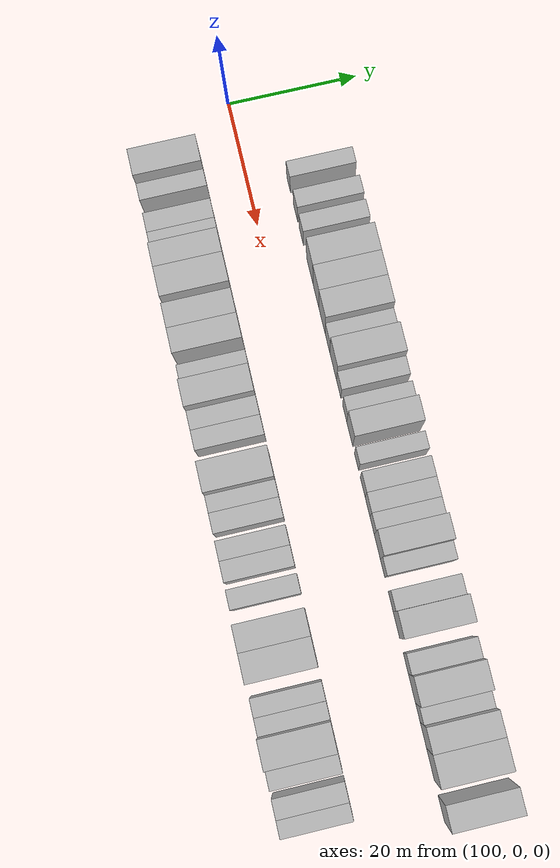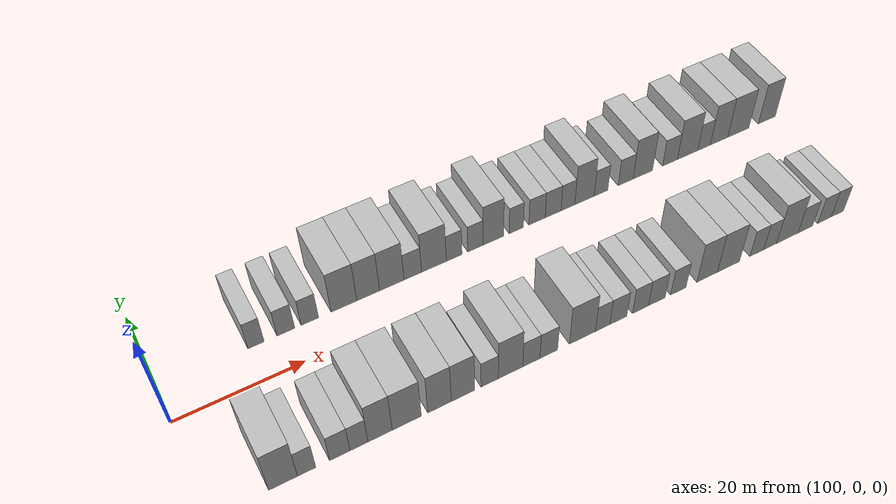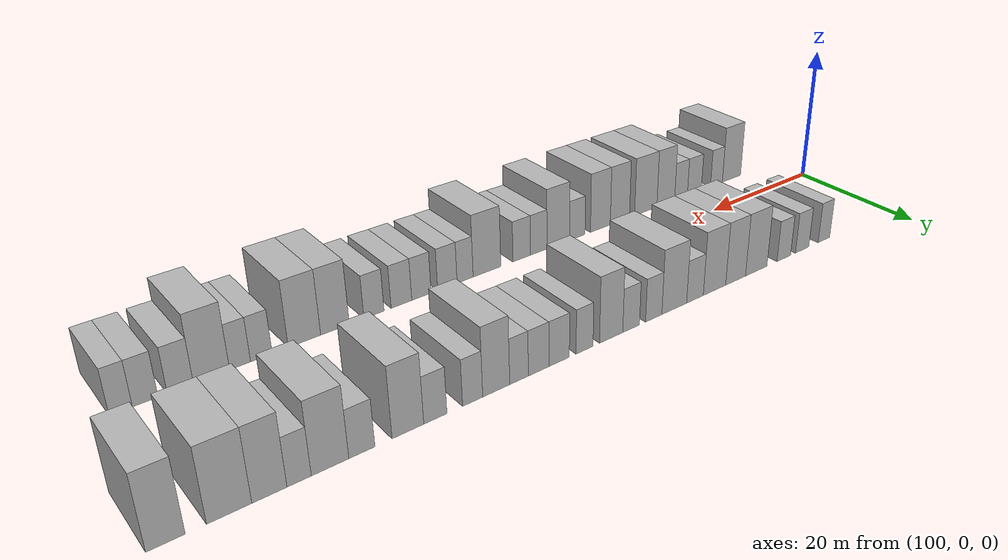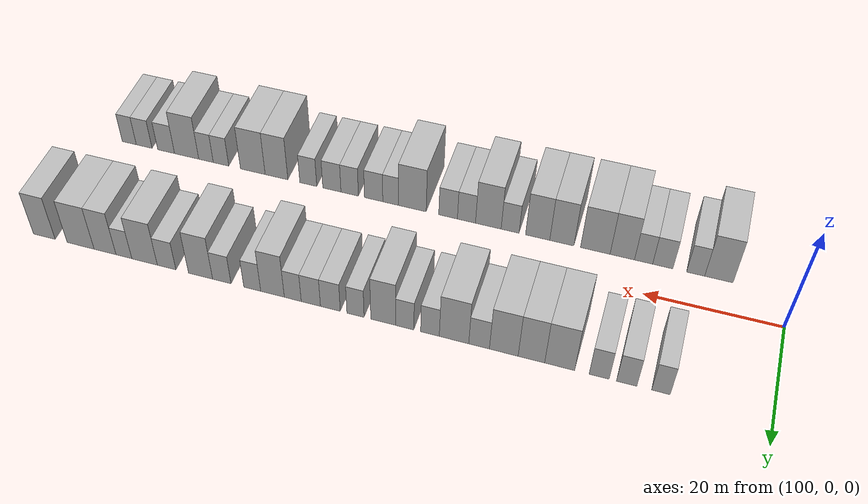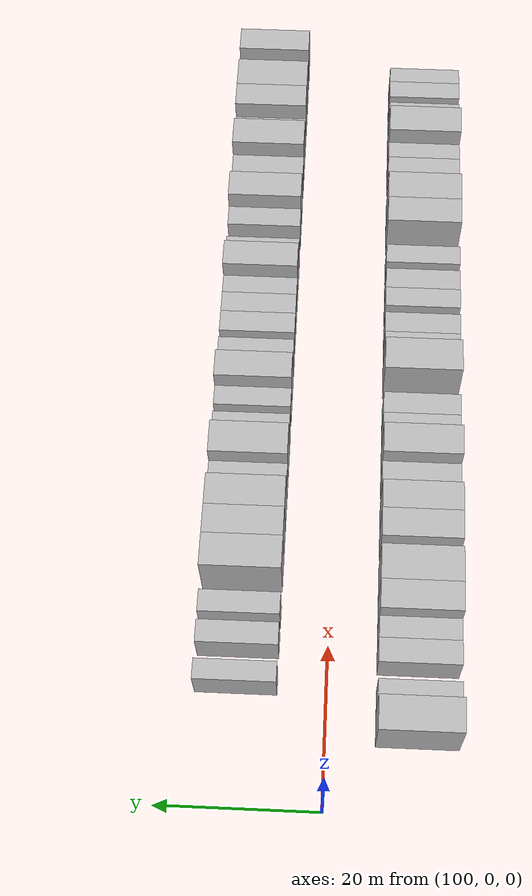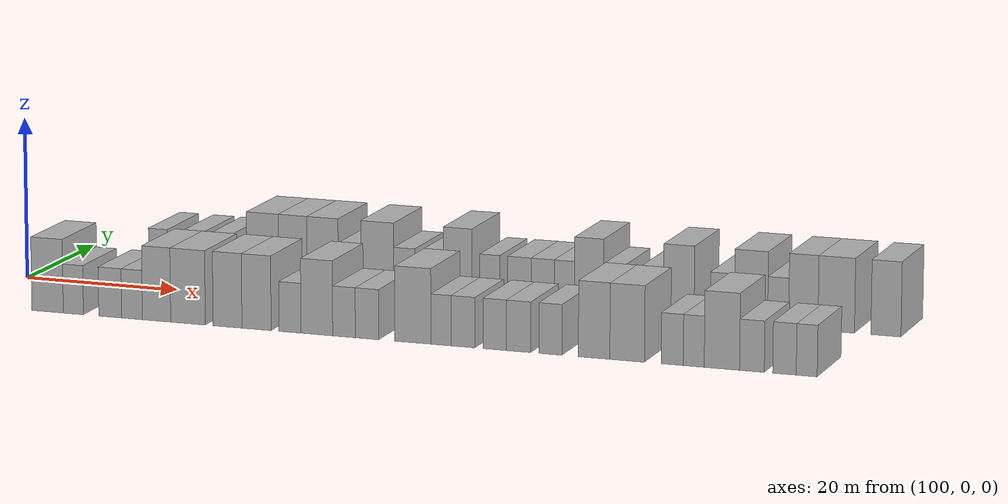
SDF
<sdf version="1.6">
 <world name="default">
  <model name="building_28">
   <static>1</static>
   <pose>114.8620 11.0000 0 0.000000 0.000000 1.570796</pose>
   <link name="link">
    <pose>0 0 3.00 0 0 0</pose>
    <collision name="collision"><geometry><box><size>10.0000 2.4978 6.0000</size></box></geometry></collision>
    <visual name="visual">
     <cast_shadows>0</cast_shadows>
     <geometry><box><size>10.0000 2.4978 6.0000</size></box></geometry>
     <material>
      <script>
       <uri>model://HANNAS_wall/materials/scripts</uri>
       <uri>model://HANNAS_wall/materials/textures</uri>
       <name>vrc/HANNAS_wall</name>
      </script>
     </material>
    </visual>
   </link>
  </model>
  <model name="building_29">
   <static>1</static>
   <pose>119.5008 11.0000 0 0.000000 0.000000 1.570796</pose>
   <link name="link">
    <pose>0 0 3.00 0 0 0</pose>
    <collision name="collision"><geometry><box><size>10.0000 2.7798 6.0000</size></box></geometry></collision>
    <visual name="visual">
     <cast_shadows>0</cast_shadows>
     <geometry><box><size>10.0000 2.7798 6.0000</size></box></geometry>
     <material>
      <script>
       <uri>model://HANNAS_wall/materials/scripts</uri>
       <uri>model://HANNAS_wall/materials/textures</uri>
       <name>vrc/HANNAS_wall</name>
      </script>
     </material>
    </visual>
   </link>
  </model>
  <model name="building_30">
   <static>1</static>
   <pose>123.2733 11.0000 0 0.000000 0.000000 1.570796</pose>
   <link name="link">
    <pose>0 0 3.00 0 0 0</pose>
    <collision name="collision"><geometry><box><size>10.0000 2.7651 6.0000</size></box></geometry></collision>
    <visual name="visual">
     <cast_shadows>0</cast_shadows>
     <geometry><box><size>10.0000 2.7651 6.0000</size></box></geometry>
     <material>
      <script>
       <uri>model://HANNAS_wall/materials/scripts</uri>
       <uri>model://HANNAS_wall/materials/textures</uri>
       <name>vrc/HANNAS_wall</name>
      </script>
     </material>
    </visual>
   </link>
  </model>
  <model name="building_31">
   <static>1</static>
   <pose>128.7445 11.0000 0 0.000000 0.000000 1.570796</pose>
   <link name="link">
    <pose>0 0 4.50 0 0 0</pose>
    <collision name="collision"><geometry><box><size>10.0000 4.1774 9.0000</size></box></geometry></collision>
    <visual name="visual">
     <cast_shadows>0</cast_shadows>
     <geometry><box><size>10.0000 4.1774 9.0000</size></box></geometry>
     <material>
      <script>
       <uri>model://HANNAS_wall/materials/scripts</uri>
       <uri>model://HANNAS_wall/materials/textures</uri>
       <name>vrc/HANNAS_wall</name>
      </script>
     </material>
    </visual>
   </link>
  </model>
  <model name="building_32">
   <static>1</static>
   <pose>132.7056 11.0000 0 0.000000 0.000000 1.570796</pose>
   <link name="link">
    <pose>0 0 4.50 0 0 0</pose>
    <collision name="collision"><geometry><box><size>10.0000 3.7448 9.0000</size></box></geometry></collision>
    <visual name="visual">
     <cast_shadows>0</cast_shadows>
     <geometry><box><size>10.0000 3.7448 9.0000</size></box></geometry>
     <material>
      <script>
       <uri>model://HANNAS_wall/materials/scripts</uri>
       <uri>model://HANNAS_wall/materials/textures</uri>
       <name>vrc/HANNAS_wall</name>
      </script>
     </material>
    </visual>
   </link>
  </model>
  <model name="building_33">
   <static>1</static>
   <pose>136.6196 11.0000 0 0.000000 0.000000 1.570796</pose>
   <link name="link">
    <pose>0 0 4.50 0 0 0</pose>
    <collision name="collision"><geometry><box><size>10.0000 4.0831 9.0000</size></box></geometry></collision>
    <visual name="visual">
     <cast_shadows>0</cast_shadows>
     <geometry><box><size>10.0000 4.0831 9.0000</size></box></geometry>
     <material>
      <script>
       <uri>model://HANNAS_wall/materials/scripts</uri>
       <uri>model://HANNAS_wall/materials/textures</uri>
       <name>vrc/HANNAS_wall</name>
      </script>
     </material>
    </visual>
   </link>
  </model>
  <model name="building_34">
   <static>1</static>
   <pose>140.1414 11.0000 0 0.000000 0.000000 1.570796</pose>
   <link name="link">
    <pose>0 0 3.00 0 0 0</pose>
    <collision name="collision"><geometry><box><size>10.0000 2.9606 6.0000</size></box></geometry></collision>
    <visual name="visual">
     <cast_shadows>0</cast_shadows>
     <geometry><box><size>10.0000 2.9606 6.0000</size></box></geometry>
     <material>
      <script>
       <uri>model://HANNAS_wall/materials/scripts</uri>
       <uri>model://HANNAS_wall/materials/textures</uri>
       <name>vrc/HANNAS_wall</name>
      </script>
     </material>
    </visual>
   </link>
  </model>
  <model name="building_35">
   <static>1</static>
   <pose>143.7524 11.0000 0 0.000000 0.000000 1.570796</pose>
   <link name="link">
    <pose>0 0 4.50 0 0 0</pose>
    <collision name="collision"><geometry><box><size>10.0000 4.2613 9.0000</size></box></geometry></collision>
    <visual name="visual">
     <cast_shadows>0</cast_shadows>
     <geometry><box><size>10.0000 4.2613 9.0000</size></box></geometry>
     <material>
      <script>
       <uri>model://HANNAS_wall/materials/scripts</uri>
       <uri>model://HANNAS_wall/materials/textures</uri>
       <name>vrc/HANNAS_wall</name>
      </script>
     </material>
    </visual>
   </link>
  </model>
  <model name="building_36">
   <static>1</static>
   <pose>147.2418 11.0000 0 0.000000 0.000000 1.570796</pose>
   <link name="link">
    <pose>0 0 3.00 0 0 0</pose>
    <collision name="collision"><geometry><box><size>10.0000 2.7175 6.0000</size></box></geometry></collision>
    <visual name="visual">
     <cast_shadows>0</cast_shadows>
     <geometry><box><size>10.0000 2.7175 6.0000</size></box></geometry>
     <material>
      <script>
       <uri>model://HANNAS_wall/materials/scripts</uri>
       <uri>model://HANNAS_wall/materials/textures</uri>
       <name>vrc/HANNAS_wall</name>
      </script>
     </material>
    </visual>
   </link>
  </model>
  <model name="building_37">
   <static>1</static>
   <pose>150.9488 11.0000 0 0.000000 0.000000 1.570796</pose>
   <link name="link">
    <pose>0 0 3.00 0 0 0</pose>
    <collision name="collision"><geometry><box><size>10.0000 2.6964 6.0000</size></box></geometry></collision>
    <visual name="visual">
     <cast_shadows>0</cast_shadows>
     <geometry><box><size>10.0000 2.6964 6.0000</size></box></geometry>
     <material>
      <script>
       <uri>model://HANNAS_wall/materials/scripts</uri>
       <uri>model://HANNAS_wall/materials/textures</uri>
       <name>vrc/HANNAS_wall</name>
      </script>
     </material>
    </visual>
   </link>
  </model>
  <model name="building_38">
   <static>1</static>
   <pose>154.1245 11.0000 0 0.000000 0.000000 1.570796</pose>
   <link name="link">
    <pose>0 0 4.50 0 0 0</pose>
    <collision name="collision"><geometry><box><size>10.0000 3.6550 9.0000</size></box></geometry></collision>
    <visual name="visual">
     <cast_shadows>0</cast_shadows>
     <geometry><box><size>10.0000 3.6550 9.0000</size></box></geometry>
     <material>
      <script>
       <uri>model://HANNAS_wall/materials/scripts</uri>
       <uri>model://HANNAS_wall/materials/textures</uri>
       <name>vrc/HANNAS_wall</name>
      </script>
     </material>
    </visual>
   </link>
  </model>
  <model name="building_39">
   <static>1</static>
   <pose>158.2361 11.0000 0 0.000000 0.000000 1.570796</pose>
   <link name="link">
    <pose>0 0 3.00 0 0 0</pose>
    <collision name="collision"><geometry><box><size>10.0000 2.5682 6.0000</size></box></geometry></collision>
    <visual name="visual">
     <cast_shadows>0</cast_shadows>
     <geometry><box><size>10.0000 2.5682 6.0000</size></box></geometry>
     <material>
      <script>
       <uri>model://HANNAS_wall/materials/scripts</uri>
       <uri>model://HANNAS_wall/materials/textures</uri>
       <name>vrc/HANNAS_wall</name>
      </script>
     </material>
    </visual>
   </link>
  </model>
  <model name="building_40">
   <static>1</static>
   <pose>162.0129 11.0000 0 0.000000 0.000000 1.570796</pose>
   <link name="link">
    <pose>0 0 3.00 0 0 0</pose>
    <collision name="collision"><geometry><box><size>10.0000 2.9854 6.0000</size></box></geometry></collision>
    <visual name="visual">
     <cast_shadows>0</cast_shadows>
     <geometry><box><size>10.0000 2.9854 6.0000</size></box></geometry>
     <material>
      <script>
       <uri>model://HANNAS_wall/materials/scripts</uri>
       <uri>model://HANNAS_wall/materials/textures</uri>
       <name>vrc/HANNAS_wall</name>
      </script>
     </material>
    </visual>
   </link>
  </model>
  <model name="building_41">
   <static>1</static>
   <pose>164.9668 11.0000 0 0.000000 0.000000 1.570796</pose>
   <link name="link">
    <pose>0 0 3.00 0 0 0</pose>
    <collision name="collision"><geometry><box><size>10.0000 2.9223 6.0000</size></box></geometry></collision>
    <visual name="visual">
     <cast_shadows>0</cast_shadows>
     <geometry><box><size>10.0000 2.9223 6.0000</size></box></geometry>
     <material>
      <script>
       <uri>model://HANNAS_wall/materials/scripts</uri>
       <uri>model://HANNAS_wall/materials/textures</uri>
       <name>vrc/HANNAS_wall</name>
      </script>
     </material>
    </visual>
   </link>
  </model>
  <model name="building_42">
   <static>1</static>
   <pose>167.7233 11.0000 0 0.000000 0.000000 1.570796</pose>
   <link name="link">
    <pose>0 0 3.00 0 0 0</pose>
    <collision name="collision"><geometry><box><size>10.0000 2.5906 6.0000</size></box></geometry></collision>
    <visual name="visual">
     <cast_shadows>0</cast_shadows>
     <geometry><box><size>10.0000 2.5906 6.0000</size></box></geometry>
     <material>
      <script>
       <uri>model://HANNAS_wall/materials/scripts</uri>
       <uri>model://HANNAS_wall/materials/textures</uri>
       <name>vrc/HANNAS_wall</name>
      </script>
     </material>
    </visual>
   </link>
  </model>
  <model name="building_43">
   <static>1</static>
   <pose>170.8383 11.0000 0 0.000000 0.000000 1.570796</pose>
   <link name="link">
    <pose>0 0 4.50 0 0 0</pose>
    <collision name="collision"><geometry><box><size>10.0000 3.6394 9.0000</size></box></geometry></collision>
    <visual name="visual">
     <cast_shadows>0</cast_shadows>
     <geometry><box><size>10.0000 3.6394 9.0000</size></box></geometry>
     <material>
      <script>
       <uri>model://HANNAS_wall/materials/scripts</uri>
       <uri>model://HANNAS_wall/materials/textures</uri>
       <name>vrc/HANNAS_wall</name>
      </script>
     </material>
    </visual>
   </link>
  </model>
  <model name="building_44">
   <static>1</static>
   <pose>173.9705 11.0000 0 0.000000 0.000000 1.570796</pose>
   <link name="link">
    <pose>0 0 3.00 0 0 0</pose>
    <collision name="collision"><geometry><box><size>10.0000 2.6250 6.0000</size></box></geometry></collision>
    <visual name="visual">
     <cast_shadows>0</cast_shadows>
     <geometry><box><size>10.0000 2.6250 6.0000</size></box></geometry>
     <material>
      <script>
       <uri>model://HANNAS_wall/materials/scripts</uri>
       <uri>model://HANNAS_wall/materials/textures</uri>
       <name>vrc/HANNAS_wall</name>
      </script>
     </material>
    </visual>
   </link>
  </model>
  <model name="building_45">
   <static>1</static>
   <pose>178.7281 11.0000 0 0.000000 0.000000 1.570796</pose>
   <link name="link">
    <pose>0 0 3.00 0 0 0</pose>
    <collision name="collision"><geometry><box><size>10.0000 2.8901 6.0000</size></box></geometry></collision>
    <visual name="visual">
     <cast_shadows>0</cast_shadows>
     <geometry><box><size>10.0000 2.8901 6.0000</size></box></geometry>
     <material>
      <script>
       <uri>model://HANNAS_wall/materials/scripts</uri>
       <uri>model://HANNAS_wall/materials/textures</uri>
       <name>vrc/HANNAS_wall</name>
      </script>
     </material>
    </visual>
   </link>
  </model>
  <model name="building_46">
   <static>1</static>
   <pose>182.0829 11.0000 0 0.000000 0.000000 1.570796</pose>
   <link name="link">
    <pose>0 0 4.50 0 0 0</pose>
    <collision name="collision"><geometry><box><size>10.0000 3.8195 9.0000</size></box></geometry></collision>
    <visual name="visual">
     <cast_shadows>0</cast_shadows>
     <geometry><box><size>10.0000 3.8195 9.0000</size></box></geometry>
     <material>
      <script>
       <uri>model://HANNAS_wall/materials/scripts</uri>
       <uri>model://HANNAS_wall/materials/textures</uri>
       <name>vrc/HANNAS_wall</name>
      </script>
     </material>
    </visual>
   </link>
  </model>
  <model name="building_47">
   <static>1</static>
   <pose>187.4792 11.0000 0 0.000000 0.000000 1.570796</pose>
   <link name="link">
    <pose>0 0 3.00 0 0 0</pose>
    <collision name="collision"><geometry><box><size>10.0000 2.9730 6.0000</size></box></geometry></collision>
    <visual name="visual">
     <cast_shadows>0</cast_shadows>
     <geometry><box><size>10.0000 2.9730 6.0000</size></box></geometry>
     <material>
      <script>
       <uri>model://HANNAS_wall/materials/scripts</uri>
       <uri>model://HANNAS_wall/materials/textures</uri>
       <name>vrc/HANNAS_wall</name>
      </script>
     </material>
    </visual>
   </link>
  </model>
  <model name="building_48">
   <static>1</static>
   <pose>191.0254 11.0000 0 0.000000 0.000000 1.570796</pose>
   <link name="link">
    <pose>0 0 4.50 0 0 0</pose>
    <collision name="collision"><geometry><box><size>10.0000 4.1193 9.0000</size></box></geometry></collision>
    <visual name="visual">
     <cast_shadows>0</cast_shadows>
     <geometry><box><size>10.0000 4.1193 9.0000</size></box></geometry>
     <material>
      <script>
       <uri>model://HANNAS_wall/materials/scripts</uri>
       <uri>model://HANNAS_wall/materials/textures</uri>
       <name>vrc/HANNAS_wall</name>
      </script>
     </material>
    </visual>
   </link>
  </model>
  <model name="building_49">
   <static>1</static>
   <pose>194.3731 11.0000 0 0.000000 0.000000 1.570796</pose>
   <link name="link">
    <pose>0 0 3.00 0 0 0</pose>
    <collision name="collision"><geometry><box><size>10.0000 2.5761 6.0000</size></box></geometry></collision>
    <visual name="visual">
     <cast_shadows>0</cast_shadows>
     <geometry><box><size>10.0000 2.5761 6.0000</size></box></geometry>
     <material>
      <script>
       <uri>model://HANNAS_wall/materials/scripts</uri>
       <uri>model://HANNAS_wall/materials/textures</uri>
       <name>vrc/HANNAS_wall</name>
      </script>
     </material>
    </visual>
   </link>
  </model>
  <model name="building_50">
   <static>1</static>
   <pose>197.4617 11.0000 0 0.000000 0.000000 1.570796</pose>
   <link name="link">
    <pose>0 0 4.50 0 0 0</pose>
    <collision name="collision"><geometry><box><size>10.0000 3.6011 9.0000</size></box></geometry></collision>
    <visual name="visual">
     <cast_shadows>0</cast_shadows>
     <geometry><box><size>10.0000 3.6011 9.0000</size></box></geometry>
     <material>
      <script>
       <uri>model://HANNAS_wall/materials/scripts</uri>
       <uri>model://HANNAS_wall/materials/textures</uri>
       <name>vrc/HANNAS_wall</name>
      </script>
     </material>
    </visual>
   </link>
  </model>
  <model name="building_51">
   <static>1</static>
   <pose>201.4836 11.0000 0 0.000000 0.000000 1.570796</pose>
   <link name="link">
    <pose>0 0 4.50 0 0 0</pose>
    <collision name="collision"><geometry><box><size>10.0000 4.4427 9.0000</size></box></geometry></collision>
    <visual name="visual">
     <cast_shadows>0</cast_shadows>
     <geometry><box><size>10.0000 4.4427 9.0000</size></box></geometry>
     <material>
      <script>
       <uri>model://HANNAS_wall/materials/scripts</uri>
       <uri>model://HANNAS_wall/materials/textures</uri>
       <name>vrc/HANNAS_wall</name>
      </script>
     </material>
    </visual>
   </link>
  </model>
  <model name="building_52">
   <static>1</static>
   <pose>207.5199 11.0000 0 0.000000 0.000000 1.570796</pose>
   <link name="link">
    <pose>0 0 4.50 0 0 0</pose>
    <collision name="collision"><geometry><box><size>10.0000 3.6299 9.0000</size></box></geometry></collision>
    <visual name="visual">
     <cast_shadows>0</cast_shadows>
     <geometry><box><size>10.0000 3.6299 9.0000</size></box></geometry>
     <material>
      <script>
       <uri>model://HANNAS_wall/materials/scripts</uri>
       <uri>model://HANNAS_wall/materials/textures</uri>
       <name>vrc/HANNAS_wall</name>
      </script>
     </material>
    </visual>
   </link>
  </model>
  <model name="building_77">
   <static>1</static>
   <pose>109.9099 -11.0000 0 0.000000 0.000000 1.570796</pose>
   <link name="link">
    <pose>0 0 4.50 0 0 0</pose>
    <collision name="collision"><geometry><box><size>10.0000 4.0997 9.0000</size></box></geometry></collision>
    <visual name="visual">
     <cast_shadows>0</cast_shadows>
     <geometry><box><size>10.0000 4.0997 9.0000</size></box></geometry>
     <material>
      <script>
       <uri>model://HANNAS_wall/materials/scripts</uri>
       <uri>model://HANNAS_wall/materials/textures</uri>
       <name>vrc/HANNAS_wall</name>
      </script>
     </material>
    </visual>
   </link>
  </model>
  <model name="building_78">
   <static>1</static>
   <pose>113.2725 -11.0000 0 0.000000 0.000000 1.570796</pose>
   <link name="link">
    <pose>0 0 3.00 0 0 0</pose>
    <collision name="collision"><geometry><box><size>10.0000 2.6253 6.0000</size></box></geometry></collision>
    <visual name="visual">
     <cast_shadows>0</cast_shadows>
     <geometry><box><size>10.0000 2.6253 6.0000</size></box></geometry>
     <material>
      <script>
       <uri>model://HANNAS_wall/materials/scripts</uri>
       <uri>model://HANNAS_wall/materials/textures</uri>
       <name>vrc/HANNAS_wall</name>
      </script>
     </material>
    </visual>
   </link>
  </model>
  <model name="building_79">
   <static>1</static>
   <pose>118.0762 -11.0000 0 0.000000 0.000000 1.570796</pose>
   <link name="link">
    <pose>0 0 3.00 0 0 0</pose>
    <collision name="collision"><geometry><box><size>10.0000 2.9821 6.0000</size></box></geometry></collision>
    <visual name="visual">
     <cast_shadows>0</cast_shadows>
     <geometry><box><size>10.0000 2.9821 6.0000</size></box></geometry>
     <material>
      <script>
       <uri>model://HANNAS_wall/materials/scripts</uri>
       <uri>model://HANNAS_wall/materials/textures</uri>
       <name>vrc/HANNAS_wall</name>
      </script>
     </material>
    </visual>
   </link>
  </model>
  <model name="building_80">
   <static>1</static>
   <pose>120.9094 -11.0000 0 0.000000 0.000000 1.570796</pose>
   <link name="link">
    <pose>0 0 3.00 0 0 0</pose>
    <collision name="collision"><geometry><box><size>10.0000 2.6843 6.0000</size></box></geometry></collision>
    <visual name="visual">
     <cast_shadows>0</cast_shadows>
     <geometry><box><size>10.0000 2.6843 6.0000</size></box></geometry>
     <material>
      <script>
       <uri>model://HANNAS_wall/materials/scripts</uri>
       <uri>model://HANNAS_wall/materials/textures</uri>
       <name>vrc/HANNAS_wall</name>
      </script>
     </material>
    </visual>
   </link>
  </model>
  <model name="building_81">
   <static>1</static>
   <pose>124.0733 -11.0000 0 0.000000 0.000000 1.570796</pose>
   <link name="link">
    <pose>0 0 4.50 0 0 0</pose>
    <collision name="collision"><geometry><box><size>10.0000 3.6434 9.0000</size></box></geometry></collision>
    <visual name="visual">
     <cast_shadows>0</cast_shadows>
     <geometry><box><size>10.0000 3.6434 9.0000</size></box></geometry>
     <material>
      <script>
       <uri>model://HANNAS_wall/materials/scripts</uri>
       <uri>model://HANNAS_wall/materials/textures</uri>
       <name>vrc/HANNAS_wall</name>
      </script>
     </material>
    </visual>
   </link>
  </model>
  <model name="building_82">
   <static>1</static>
   <pose>128.1199 -11.0000 0 0.000000 0.000000 1.570796</pose>
   <link name="link">
    <pose>0 0 4.50 0 0 0</pose>
    <collision name="collision"><geometry><box><size>10.0000 4.4499 9.0000</size></box></geometry></collision>
    <visual name="visual">
     <cast_shadows>0</cast_shadows>
     <geometry><box><size>10.0000 4.4499 9.0000</size></box></geometry>
     <material>
      <script>
       <uri>model://HANNAS_wall/materials/scripts</uri>
       <uri>model://HANNAS_wall/materials/textures</uri>
       <name>vrc/HANNAS_wall</name>
      </script>
     </material>
    </visual>
   </link>
  </model>
  <model name="building_83">
   <static>1</static>
   <pose>133.1829 -11.0000 0 0.000000 0.000000 1.570796</pose>
   <link name="link">
    <pose>0 0 4.50 0 0 0</pose>
    <collision name="collision"><geometry><box><size>10.0000 3.6761 9.0000</size></box></geometry></collision>
    <visual name="visual">
     <cast_shadows>0</cast_shadows>
     <geometry><box><size>10.0000 3.6761 9.0000</size></box></geometry>
     <material>
      <script>
       <uri>model://HANNAS_wall/materials/scripts</uri>
       <uri>model://HANNAS_wall/materials/textures</uri>
       <name>vrc/HANNAS_wall</name>
      </script>
     </material>
    </visual>
   </link>
  </model>
  <model name="building_84">
   <static>1</static>
   <pose>136.8766 -11.0000 0 0.000000 0.000000 1.570796</pose>
   <link name="link">
    <pose>0 0 4.50 0 0 0</pose>
    <collision name="collision"><geometry><box><size>10.0000 3.7112 9.0000</size></box></geometry></collision>
    <visual name="visual">
     <cast_shadows>0</cast_shadows>
     <geometry><box><size>10.0000 3.7112 9.0000</size></box></geometry>
     <material>
      <script>
       <uri>model://HANNAS_wall/materials/scripts</uri>
       <uri>model://HANNAS_wall/materials/textures</uri>
       <name>vrc/HANNAS_wall</name>
      </script>
     </material>
    </visual>
   </link>
  </model>
  <model name="building_85">
   <static>1</static>
   <pose>141.1201 -11.0000 0 0.000000 0.000000 1.570796</pose>
   <link name="link">
    <pose>0 0 3.00 0 0 0</pose>
    <collision name="collision"><geometry><box><size>10.0000 2.7756 6.0000</size></box></geometry></collision>
    <visual name="visual">
     <cast_shadows>0</cast_shadows>
     <geometry><box><size>10.0000 2.7756 6.0000</size></box></geometry>
     <material>
      <script>
       <uri>model://HANNAS_wall/materials/scripts</uri>
       <uri>model://HANNAS_wall/materials/textures</uri>
       <name>vrc/HANNAS_wall</name>
      </script>
     </material>
    </visual>
   </link>
  </model>
  <model name="building_86">
   <static>1</static>
   <pose>144.5081 -11.0000 0 0.000000 0.000000 1.570796</pose>
   <link name="link">
    <pose>0 0 4.50 0 0 0</pose>
    <collision name="collision"><geometry><box><size>10.0000 4.0004 9.0000</size></box></geometry></collision>
    <visual name="visual">
     <cast_shadows>0</cast_shadows>
     <geometry><box><size>10.0000 4.0004 9.0000</size></box></geometry>
     <material>
      <script>
       <uri>model://HANNAS_wall/materials/scripts</uri>
       <uri>model://HANNAS_wall/materials/textures</uri>
       <name>vrc/HANNAS_wall</name>
      </script>
     </material>
    </visual>
   </link>
  </model>
  <model name="building_87">
   <static>1</static>
   <pose>147.9290 -11.0000 0 0.000000 0.000000 1.570796</pose>
   <link name="link">
    <pose>0 0 3.00 0 0 0</pose>
    <collision name="collision"><geometry><box><size>10.0000 2.8413 6.0000</size></box></geometry></collision>
    <visual name="visual">
     <cast_shadows>0</cast_shadows>
     <geometry><box><size>10.0000 2.8413 6.0000</size></box></geometry>
     <material>
      <script>
       <uri>model://HANNAS_wall/materials/scripts</uri>
       <uri>model://HANNAS_wall/materials/textures</uri>
       <name>vrc/HANNAS_wall</name>
      </script>
     </material>
    </visual>
   </link>
  </model>
  <model name="building_88">
   <static>1</static>
   <pose>150.8246 -11.0000 0 0.000000 0.000000 1.570796</pose>
   <link name="link">
    <pose>0 0 3.00 0 0 0</pose>
    <collision name="collision"><geometry><box><size>10.0000 2.9500 6.0000</size></box></geometry></collision>
    <visual name="visual">
     <cast_shadows>0</cast_shadows>
     <geometry><box><size>10.0000 2.9500 6.0000</size></box></geometry>
     <material>
      <script>
       <uri>model://HANNAS_wall/materials/scripts</uri>
       <uri>model://HANNAS_wall/materials/textures</uri>
       <name>vrc/HANNAS_wall</name>
      </script>
     </material>
    </visual>
   </link>
  </model>
  <model name="building_89">
   <static>1</static>
   <pose>156.5277 -11.0000 0 0.000000 0.000000 1.570796</pose>
   <link name="link">
    <pose>0 0 4.50 0 0 0</pose>
    <collision name="collision"><geometry><box><size>10.0000 4.4561 9.0000</size></box></geometry></collision>
    <visual name="visual">
     <cast_shadows>0</cast_shadows>
     <geometry><box><size>10.0000 4.4561 9.0000</size></box></geometry>
     <material>
      <script>
       <uri>model://HANNAS_wall/materials/scripts</uri>
       <uri>model://HANNAS_wall/materials/textures</uri>
       <name>vrc/HANNAS_wall</name>
      </script>
     </material>
    </visual>
   </link>
  </model>
  <model name="building_90">
   <static>1</static>
   <pose>160.0120 -11.0000 0 0.000000 0.000000 1.570796</pose>
   <link name="link">
    <pose>0 0 3.00 0 0 0</pose>
    <collision name="collision"><geometry><box><size>10.0000 2.5126 6.0000</size></box></geometry></collision>
    <visual name="visual">
     <cast_shadows>0</cast_shadows>
     <geometry><box><size>10.0000 2.5126 6.0000</size></box></geometry>
     <material>
      <script>
       <uri>model://HANNAS_wall/materials/scripts</uri>
       <uri>model://HANNAS_wall/materials/textures</uri>
       <name>vrc/HANNAS_wall</name>
      </script>
     </material>
    </visual>
   </link>
  </model>
  <model name="building_91">
   <static>1</static>
   <pose>162.7504 -11.0000 0 0.000000 0.000000 1.570796</pose>
   <link name="link">
    <pose>0 0 3.00 0 0 0</pose>
    <collision name="collision"><geometry><box><size>10.0000 2.9642 6.0000</size></box></geometry></collision>
    <visual name="visual">
     <cast_shadows>0</cast_shadows>
     <geometry><box><size>10.0000 2.9642 6.0000</size></box></geometry>
     <material>
      <script>
       <uri>model://HANNAS_wall/materials/scripts</uri>
       <uri>model://HANNAS_wall/materials/textures</uri>
       <name>vrc/HANNAS_wall</name>
      </script>
     </material>
    </visual>
   </link>
  </model>
  <model name="building_92">
   <static>1</static>
   <pose>166.6587 -11.0000 0 0.000000 0.000000 1.570796</pose>
   <link name="link">
    <pose>0 0 3.00 0 0 0</pose>
    <collision name="collision"><geometry><box><size>10.0000 2.8525 6.0000</size></box></geometry></collision>
    <visual name="visual">
     <cast_shadows>0</cast_shadows>
     <geometry><box><size>10.0000 2.8525 6.0000</size></box></geometry>
     <material>
      <script>
       <uri>model://HANNAS_wall/materials/scripts</uri>
       <uri>model://HANNAS_wall/materials/textures</uri>
       <name>vrc/HANNAS_wall</name>
      </script>
     </material>
    </visual>
   </link>
  </model>
  <model name="building_93">
   <static>1</static>
   <pose>169.5765 -11.0000 0 0.000000 0.000000 1.570796</pose>
   <link name="link">
    <pose>0 0 3.00 0 0 0</pose>
    <collision name="collision"><geometry><box><size>10.0000 2.9831 6.0000</size></box></geometry></collision>
    <visual name="visual">
     <cast_shadows>0</cast_shadows>
     <geometry><box><size>10.0000 2.9831 6.0000</size></box></geometry>
     <material>
      <script>
       <uri>model://HANNAS_wall/materials/scripts</uri>
       <uri>model://HANNAS_wall/materials/textures</uri>
       <name>vrc/HANNAS_wall</name>
      </script>
     </material>
    </visual>
   </link>
  </model>
  <model name="building_94">
   <static>1</static>
   <pose>173.4740 -11.0000 0 0.000000 0.000000 1.570796</pose>
   <link name="link">
    <pose>0 0 3.00 0 0 0</pose>
    <collision name="collision"><geometry><box><size>10.0000 2.8119 6.0000</size></box></geometry></collision>
    <visual name="visual">
     <cast_shadows>0</cast_shadows>
     <geometry><box><size>10.0000 2.8119 6.0000</size></box></geometry>
     <material>
      <script>
       <uri>model://HANNAS_wall/materials/scripts</uri>
       <uri>model://HANNAS_wall/materials/textures</uri>
       <name>vrc/HANNAS_wall</name>
      </script>
     </material>
    </visual>
   </link>
  </model>
  <model name="building_95">
   <static>1</static>
   <pose>178.7896 -11.0000 0 0.000000 0.000000 1.570796</pose>
   <link name="link">
    <pose>0 0 4.50 0 0 0</pose>
    <collision name="collision"><geometry><box><size>10.0000 3.8192 9.0000</size></box></geometry></collision>
    <visual name="visual">
     <cast_shadows>0</cast_shadows>
     <geometry><box><size>10.0000 3.8192 9.0000</size></box></geometry>
     <material>
      <script>
       <uri>model://HANNAS_wall/materials/scripts</uri>
       <uri>model://HANNAS_wall/materials/textures</uri>
       <name>vrc/HANNAS_wall</name>
      </script>
     </material>
    </visual>
   </link>
  </model>
  <model name="building_96">
   <static>1</static>
   <pose>182.7916 -11.0000 0 0.000000 0.000000 1.570796</pose>
   <link name="link">
    <pose>0 0 4.50 0 0 0</pose>
    <collision name="collision"><geometry><box><size>10.0000 4.1848 9.0000</size></box></geometry></collision>
    <visual name="visual">
     <cast_shadows>0</cast_shadows>
     <geometry><box><size>10.0000 4.1848 9.0000</size></box></geometry>
     <material>
      <script>
       <uri>model://HANNAS_wall/materials/scripts</uri>
       <uri>model://HANNAS_wall/materials/textures</uri>
       <name>vrc/HANNAS_wall</name>
      </script>
     </material>
    </visual>
   </link>
  </model>
  <model name="building_97">
   <static>1</static>
   <pose>188.2096 -11.0000 0 0.000000 0.000000 1.570796</pose>
   <link name="link">
    <pose>0 0 3.00 0 0 0</pose>
    <collision name="collision"><geometry><box><size>10.0000 2.6513 6.0000</size></box></geometry></collision>
    <visual name="visual">
     <cast_shadows>0</cast_shadows>
     <geometry><box><size>10.0000 2.6513 6.0000</size></box></geometry>
     <material>
      <script>
       <uri>model://HANNAS_wall/materials/scripts</uri>
       <uri>model://HANNAS_wall/materials/textures</uri>
       <name>vrc/HANNAS_wall</name>
      </script>
     </material>
    </visual>
   </link>
  </model>
  <model name="building_98">
   <static>1</static>
   <pose>190.7904 -11.0000 0 0.000000 0.000000 1.570796</pose>
   <link name="link">
    <pose>0 0 3.00 0 0 0</pose>
    <collision name="collision"><geometry><box><size>10.0000 2.5102 6.0000</size></box></geometry></collision>
    <visual name="visual">
     <cast_shadows>0</cast_shadows>
     <geometry><box><size>10.0000 2.5102 6.0000</size></box></geometry>
     <material>
      <script>
       <uri>model://HANNAS_wall/materials/scripts</uri>
       <uri>model://HANNAS_wall/materials/textures</uri>
       <name>vrc/HANNAS_wall</name>
      </script>
     </material>
    </visual>
   </link>
  </model>
  <model name="building_99">
   <static>1</static>
   <pose>194.1460 -11.0000 0 0.000000 0.000000 1.570796</pose>
   <link name="link">
    <pose>0 0 4.50 0 0 0</pose>
    <collision name="collision"><geometry><box><size>10.0000 4.2009 9.0000</size></box></geometry></collision>
    <visual name="visual">
     <cast_shadows>0</cast_shadows>
     <geometry><box><size>10.0000 4.2009 9.0000</size></box></geometry>
     <material>
      <script>
       <uri>model://HANNAS_wall/materials/scripts</uri>
       <uri>model://HANNAS_wall/materials/textures</uri>
       <name>vrc/HANNAS_wall</name>
      </script>
     </material>
    </visual>
   </link>
  </model>
  <model name="building_100">
   <static>1</static>
   <pose>197.7179 -11.0000 0 0.000000 0.000000 1.570796</pose>
   <link name="link">
    <pose>0 0 3.00 0 0 0</pose>
    <collision name="collision"><geometry><box><size>10.0000 2.9430 6.0000</size></box></geometry></collision>
    <visual name="visual">
     <cast_shadows>0</cast_shadows>
     <geometry><box><size>10.0000 2.9430 6.0000</size></box></geometry>
     <material>
      <script>
       <uri>model://HANNAS_wall/materials/scripts</uri>
       <uri>model://HANNAS_wall/materials/textures</uri>
       <name>vrc/HANNAS_wall</name>
      </script>
     </material>
    </visual>
   </link>
  </model>
  <model name="building_101">
   <static>1</static>
   <pose>201.5777 -11.0000 0 0.000000 0.000000 1.570796</pose>
   <link name="link">
    <pose>0 0 3.00 0 0 0</pose>
    <collision name="collision"><geometry><box><size>10.0000 2.7766 6.0000</size></box></geometry></collision>
    <visual name="visual">
     <cast_shadows>0</cast_shadows>
     <geometry><box><size>10.0000 2.7766 6.0000</size></box></geometry>
     <material>
      <script>
       <uri>model://HANNAS_wall/materials/scripts</uri>
       <uri>model://HANNAS_wall/materials/textures</uri>
       <name>vrc/HANNAS_wall</name>
      </script>
     </material>
    </visual>
   </link>
  </model>
  <model name="building_102">
   <static>1</static>
   <pose>204.1987 -11.0000 0 0.000000 0.000000 1.570796</pose>
   <link name="link">
    <pose>0 0 3.00 0 0 0</pose>
    <collision name="collision"><geometry><box><size>10.0000 2.4654 6.0000</size></box></geometry></collision>
    <visual name="visual">
     <cast_shadows>0</cast_shadows>
     <geometry><box><size>10.0000 2.4654 6.0000</size></box></geometry>
     <material>
      <script>
       <uri>model://HANNAS_wall/materials/scripts</uri>
       <uri>model://HANNAS_wall/materials/textures</uri>
       <name>vrc/HANNAS_wall</name>
      </script>
     </material>
    </visual>
   </link>
  </model>
 </world>
</sdf>
